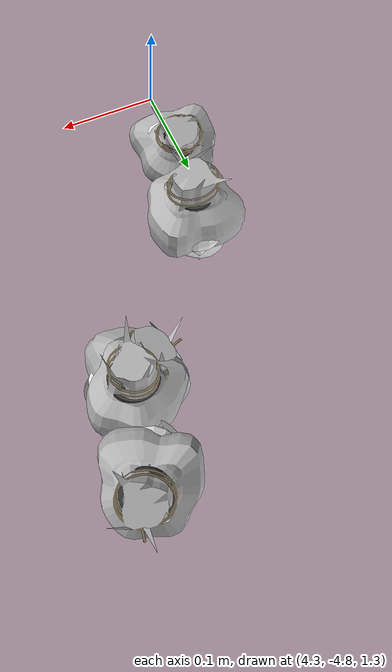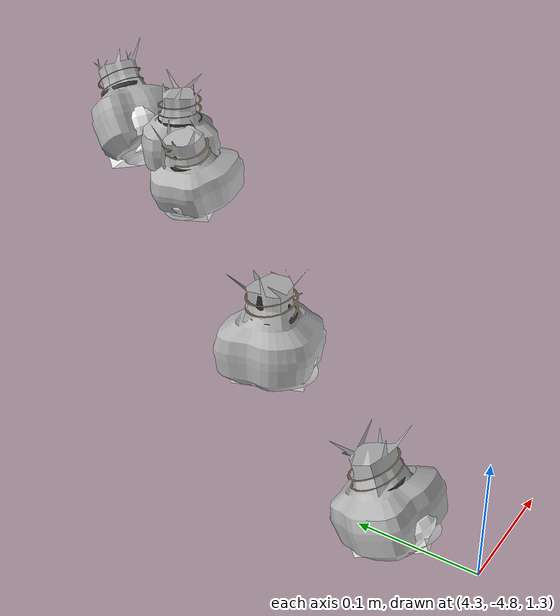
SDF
<sdf version="1.11">
 <world name="peach_orchard">
  <model name="ground">
   <static>true</static>
   <link name="link">
    <visual name="soil">
     <geometry><plane><normal>0 0 1</normal><size>32 22</size></plane></geometry>
     <material>
      <ambient>1 1 1 1</ambient>
      <diffuse>1 1 1 1</diffuse>
      <specular>0.1 0.1 0.1 1</specular>
      <pbr>
       <metal>
        <albedo_map>textures/soil_albedo.png</albedo_map>
        <normal_map type="tangent">textures/soil_normal.png</normal_map>
        <roughness>0.95</roughness>
        <metalness>0</metalness>
       </metal>
      </pbr>
     </material>
    </visual>
    <collision name="c_soil">
     <geometry><plane><normal>0 0 1</normal><size>32 22</size></plane></geometry>
    </collision>
   </link>
  </model>
  <model name="peach_tree_r3_t1_04">
   <pose>4.35047 -4.58658 1.36678 0 5.69241e-05 -1.55277</pose>
   <static>true</static>
   <link name="bag">
    <visual name="bag_mesh">
     <pose>0 0 0.0422699 0 0 -0</pose>
     <geometry>
      <mesh><uri>model://peach_sim/meshes/bagged_peach.glb</uri><scale>1.03758 1.26012 0.960679</scale></mesh>
     </geometry>
    </visual>
    <visual name="body">
     <pose>0 0 0.0242699 0 0 0</pose>
     <geometry><ellipsoid><radii>0.0389091 0.0327631 0.0262115</radii></ellipsoid></geometry>
     <material>
      <ambient>1 1 1 1</ambient>
      <diffuse>1 1 1 1</diffuse>
      <specular>0.1 0.1 0.1 1</specular>
      <pbr>
       <metal>
        <albedo_map>textures/paper_bag_albedo.png</albedo_map>
        <normal_map type="tangent">textures/paper_bag_normal.png</normal_map>
        <roughness>0.72</roughness>
        <metalness>0</metalness>
       </metal>
      </pbr>
     </material>
    </visual>
    <visual name="bottom_fold">
     <pose>0 0 0.012 0 0 0.35</pose>
     <geometry><box><size>0.0603091 0.0376776 0.022</size></box></geometry>
     <material>
      <ambient>1 1 1 1</ambient>
      <diffuse>1 1 1 1</diffuse>
      <specular>0.1 0.1 0.1 1</specular>
      <pbr>
       <metal>
        <albedo_map>textures/paper_bag_albedo.png</albedo_map>
        <normal_map type="tangent">textures/paper_bag_normal.png</normal_map>
        <roughness>0.8</roughness>
        <metalness>0</metalness>
       </metal>
      </pbr>
     </material>
    </visual>
    <visual name="fruit">
     <pose>0 0 0.0194222 0 0 0</pose>
     <geometry><sphere><radius>0.026439</radius></sphere></geometry>
     <material>
      <ambient>1 1 1 1</ambient>
      <diffuse>1 1 1 1</diffuse>
      <specular>0.1 0.1 0.1 1</specular>
      <pbr>
       <metal>
        <albedo_map>textures/fruit_skin_albedo.png</albedo_map>
        <normal_map type="tangent">textures/fruit_skin_normal.png</normal_map>
        <roughness>0.55</roughness>
        <metalness>0</metalness>
       </metal>
      </pbr>
     </material>
    </visual>
    <visual name="neck">
     <pose>0 0 0.0575397 0 0 0</pose>
     <geometry><cylinder><radius>0.013</radius><length>0.018</length></cylinder></geometry>
     <material>
      <ambient>1 1 1 1</ambient>
      <diffuse>1 1 1 1</diffuse>
      <specular>0.1 0.1 0.1 1</specular>
      <pbr>
       <metal>
        <albedo_map>textures/paper_bag_albedo.png</albedo_map>
        <normal_map type="tangent">textures/paper_bag_normal.png</normal_map>
        <roughness>0.75</roughness>
        <metalness>0</metalness>
       </metal>
      </pbr>
     </material>
    </visual>
    <visual name="gather">
     <pose>0 0 0.0385397 0 0 0</pose>
     <geometry><cylinder><radius>0.019</radius><length>0.02</length></cylinder></geometry>
     <material>
      <ambient>1 1 1 1</ambient>
      <diffuse>1 1 1 1</diffuse>
      <specular>0.1 0.1 0.1 1</specular>
      <pbr>
       <metal>
        <albedo_map>textures/paper_bag_albedo.png</albedo_map>
        <normal_map type="tangent">textures/paper_bag_normal.png</normal_map>
        <roughness>0.8</roughness>
        <metalness>0</metalness>
       </metal>
      </pbr>
     </material>
    </visual>
    <visual name="inner_paper">
     <pose>0 0 0.0625397 0 0 0</pose>
     <geometry><cylinder><radius>0.01</radius><length>0.008</length></cylinder></geometry>
     <material>
      <ambient>0.180392 0.14902 0.133333 1</ambient>
      <diffuse>0.180392 0.14902 0.133333 1</diffuse>
      <specular>0.1 0.1 0.1 1</specular>
     </material>
    </visual>
    <visual name="wire_0">
     <pose>0 0 0.0525397 0 0 0</pose>
     <geometry><cylinder><radius>0.0205</radius><length>0.0035</length></cylinder></geometry>
     <material>
      <ambient>0.25 0.25 0.25 1</ambient>
      <diffuse>0.25 0.25 0.25 1</diffuse>
      <specular>0.1 0.1 0.1 1</specular>
     </material>
    </visual>
    <visual name="wire_1">
     <pose>0 0 0.0595397 0 0 0</pose>
     <geometry><cylinder><radius>0.0205</radius><length>0.0035</length></cylinder></geometry>
     <material>
      <ambient>0.25 0.25 0.25 1</ambient>
      <diffuse>0.25 0.25 0.25 1</diffuse>
      <specular>0.1 0.1 0.1 1</specular>
     </material>
    </visual>
    <visual name="wire_tail">
     <pose>0.01 0 0.0605397 0 0.521618 0</pose>
     <geometry><cylinder><radius>0.0012</radius><length>0.026</length></cylinder></geometry>
     <material>
      <ambient>0.25 0.25 0.25 1</ambient>
      <diffuse>0.25 0.25 0.25 1</diffuse>
      <specular>0.1 0.1 0.1 1</specular>
     </material>
    </visual>
    <collision name="c_body">
     <pose>0 0 0.0242699 0 0 0</pose>
     <geometry><cylinder><radius>0.0389091</radius><length>0.0485397</length></cylinder></geometry>
    </collision>
   </link>
  </model>
  <model name="peach_tree_r3_t1_05">
   <pose>4.30682 -4.72983 1.29071 0 0.362373 1.48536</pose>
   <static>true</static>
   <link name="bag">
    <visual name="bag_mesh">
     <pose>0 0 0.0387386 0 0 0</pose>
     <geometry>
      <mesh><uri>model://peach_sim/meshes/bagged_peach.glb</uri><scale>1.02086 1.24836 0.880422</scale></mesh>
     </geometry>
    </visual>
    <visual name="body">
     <pose>0 0 0.0207386 0 0 0</pose>
     <geometry><ellipsoid><radii>0.0382822 0.0324574 0.0223977</radii></ellipsoid></geometry>
     <material>
      <ambient>1 1 1 1</ambient>
      <diffuse>1 1 1 1</diffuse>
      <specular>0.1 0.1 0.1 1</specular>
      <pbr>
       <metal>
        <albedo_map>textures/paper_bag_albedo.png</albedo_map>
        <normal_map type="tangent">textures/paper_bag_normal.png</normal_map>
        <roughness>0.72</roughness>
        <metalness>0</metalness>
       </metal>
      </pbr>
     </material>
    </visual>
    <visual name="bottom_fold">
     <pose>0 0 0.012 0 0 0.35</pose>
     <geometry><box><size>0.0593374 0.037326 0.022</size></box></geometry>
     <material>
      <ambient>1 1 1 1</ambient>
      <diffuse>1 1 1 1</diffuse>
      <specular>0.1 0.1 0.1 1</specular>
      <pbr>
       <metal>
        <albedo_map>textures/paper_bag_albedo.png</albedo_map>
        <normal_map type="tangent">textures/paper_bag_normal.png</normal_map>
        <roughness>0.8</roughness>
        <metalness>0</metalness>
       </metal>
      </pbr>
     </material>
    </visual>
    <visual name="fruit">
     <pose>0 0 0.0186004 0 0 0</pose>
     <geometry><sphere><radius>0.0255844</radius></sphere></geometry>
     <material>
      <ambient>1 1 1 1</ambient>
      <diffuse>1 1 1 1</diffuse>
      <specular>0.1 0.1 0.1 1</specular>
      <pbr>
       <metal>
        <albedo_map>textures/fruit_skin_albedo.png</albedo_map>
        <normal_map type="tangent">textures/fruit_skin_normal.png</normal_map>
        <roughness>0.55</roughness>
        <metalness>0</metalness>
       </metal>
      </pbr>
     </material>
    </visual>
    <visual name="neck">
     <pose>0 0 0.0504772 0 0 0</pose>
     <geometry><cylinder><radius>0.013</radius><length>0.018</length></cylinder></geometry>
     <material>
      <ambient>1 1 1 1</ambient>
      <diffuse>1 1 1 1</diffuse>
      <specular>0.1 0.1 0.1 1</specular>
      <pbr>
       <metal>
        <albedo_map>textures/paper_bag_albedo.png</albedo_map>
        <normal_map type="tangent">textures/paper_bag_normal.png</normal_map>
        <roughness>0.75</roughness>
        <metalness>0</metalness>
       </metal>
      </pbr>
     </material>
    </visual>
    <visual name="gather">
     <pose>0 0 0.0314772 0 0 0</pose>
     <geometry><cylinder><radius>0.019</radius><length>0.02</length></cylinder></geometry>
     <material>
      <ambient>1 1 1 1</ambient>
      <diffuse>1 1 1 1</diffuse>
      <specular>0.1 0.1 0.1 1</specular>
      <pbr>
       <metal>
        <albedo_map>textures/paper_bag_albedo.png</albedo_map>
        <normal_map type="tangent">textures/paper_bag_normal.png</normal_map>
        <roughness>0.8</roughness>
        <metalness>0</metalness>
       </metal>
      </pbr>
     </material>
    </visual>
    <visual name="inner_paper">
     <pose>0 0 0.0554772 0 0 0</pose>
     <geometry><cylinder><radius>0.01</radius><length>0.008</length></cylinder></geometry>
     <material>
      <ambient>0.180392 0.14902 0.133333 1</ambient>
      <diffuse>0.180392 0.14902 0.133333 1</diffuse>
      <specular>0.1 0.1 0.1 1</specular>
     </material>
    </visual>
    <visual name="wire_0">
     <pose>0 0 0.0454772 0 0 0</pose>
     <geometry><cylinder><radius>0.0205</radius><length>0.0035</length></cylinder></geometry>
     <material>
      <ambient>0.25 0.25 0.25 1</ambient>
      <diffuse>0.25 0.25 0.25 1</diffuse>
      <specular>0.1 0.1 0.1 1</specular>
     </material>
    </visual>
    <visual name="wire_1">
     <pose>0 0 0.0524772 0 0 0</pose>
     <geometry><cylinder><radius>0.0205</radius><length>0.0035</length></cylinder></geometry>
     <material>
      <ambient>0.25 0.25 0.25 1</ambient>
      <diffuse>0.25 0.25 0.25 1</diffuse>
      <specular>0.1 0.1 0.1 1</specular>
     </material>
    </visual>
    <visual name="wire_tail">
     <pose>0.01 0 0.0534772 0 0.521618 0</pose>
     <geometry><cylinder><radius>0.0012</radius><length>0.026</length></cylinder></geometry>
     <material>
      <ambient>0.25 0.25 0.25 1</ambient>
      <diffuse>0.25 0.25 0.25 1</diffuse>
      <specular>0.1 0.1 0.1 1</specular>
     </material>
    </visual>
    <collision name="c_body">
     <pose>0 0 0.0207386 0 0 0</pose>
     <geometry><cylinder><radius>0.0382822</radius><length>0.0414772</length></cylinder></geometry>
    </collision>
   </link>
  </model>
  <model name="peach_tree_r3_t1_07">
   <pose>4.48494 -4.41899 1.42538 0 0.287539 3.04884</pose>
   <static>true</static>
   <link name="bag">
    <visual name="bag_mesh">
     <pose>0 0 0.0385569 0 0 0</pose>
     <geometry>
      <mesh><uri>model://peach_sim/meshes/bagged_peach.glb</uri><scale>1.0035 1.19818 0.876293</scale></mesh>
     </geometry>
    </visual>
    <visual name="body">
     <pose>0 0 0.0205569 0 0 0</pose>
     <geometry><ellipsoid><radii>0.0376312 0.0311526 0.0222014</radii></ellipsoid></geometry>
     <material>
      <ambient>1 1 1 1</ambient>
      <diffuse>1 1 1 1</diffuse>
      <specular>0.1 0.1 0.1 1</specular>
      <pbr>
       <metal>
        <albedo_map>textures/paper_bag_albedo.png</albedo_map>
        <normal_map type="tangent">textures/paper_bag_normal.png</normal_map>
        <roughness>0.72</roughness>
        <metalness>0</metalness>
       </metal>
      </pbr>
     </material>
    </visual>
    <visual name="bottom_fold">
     <pose>0 0 0.012 0 0 0.35</pose>
     <geometry><box><size>0.0583283 0.0358255 0.022</size></box></geometry>
     <material>
      <ambient>1 1 1 1</ambient>
      <diffuse>1 1 1 1</diffuse>
      <specular>0.1 0.1 0.1 1</specular>
      <pbr>
       <metal>
        <albedo_map>textures/paper_bag_albedo.png</albedo_map>
        <normal_map type="tangent">textures/paper_bag_normal.png</normal_map>
        <roughness>0.8</roughness>
        <metalness>0</metalness>
       </metal>
      </pbr>
     </material>
    </visual>
    <visual name="fruit">
     <pose>0 0 0.0209464 0 0 0</pose>
     <geometry><sphere><radius>0.0280242</radius></sphere></geometry>
     <material>
      <ambient>1 1 1 1</ambient>
      <diffuse>1 1 1 1</diffuse>
      <specular>0.1 0.1 0.1 1</specular>
      <pbr>
       <metal>
        <albedo_map>textures/fruit_skin_albedo.png</albedo_map>
        <normal_map type="tangent">textures/fruit_skin_normal.png</normal_map>
        <roughness>0.55</roughness>
        <metalness>0</metalness>
       </metal>
      </pbr>
     </material>
    </visual>
    <visual name="neck">
     <pose>0 0 0.0501137 0 0 0</pose>
     <geometry><cylinder><radius>0.013</radius><length>0.018</length></cylinder></geometry>
     <material>
      <ambient>1 1 1 1</ambient>
      <diffuse>1 1 1 1</diffuse>
      <specular>0.1 0.1 0.1 1</specular>
      <pbr>
       <metal>
        <albedo_map>textures/paper_bag_albedo.png</albedo_map>
        <normal_map type="tangent">textures/paper_bag_normal.png</normal_map>
        <roughness>0.75</roughness>
        <metalness>0</metalness>
       </metal>
      </pbr>
     </material>
    </visual>
    <visual name="gather">
     <pose>0 0 0.0311137 0 0 0</pose>
     <geometry><cylinder><radius>0.019</radius><length>0.02</length></cylinder></geometry>
     <material>
      <ambient>1 1 1 1</ambient>
      <diffuse>1 1 1 1</diffuse>
      <specular>0.1 0.1 0.1 1</specular>
      <pbr>
       <metal>
        <albedo_map>textures/paper_bag_albedo.png</albedo_map>
        <normal_map type="tangent">textures/paper_bag_normal.png</normal_map>
        <roughness>0.8</roughness>
        <metalness>0</metalness>
       </metal>
      </pbr>
     </material>
    </visual>
    <visual name="inner_paper">
     <pose>0 0 0.0551137 0 0 0</pose>
     <geometry><cylinder><radius>0.01</radius><length>0.008</length></cylinder></geometry>
     <material>
      <ambient>0.180392 0.14902 0.133333 1</ambient>
      <diffuse>0.180392 0.14902 0.133333 1</diffuse>
      <specular>0.1 0.1 0.1 1</specular>
     </material>
    </visual>
    <visual name="wire_0">
     <pose>0 0 0.0451137 0 0 0</pose>
     <geometry><cylinder><radius>0.0205</radius><length>0.0035</length></cylinder></geometry>
     <material>
      <ambient>0.25 0.25 0.25 1</ambient>
      <diffuse>0.25 0.25 0.25 1</diffuse>
      <specular>0.1 0.1 0.1 1</specular>
     </material>
    </visual>
    <visual name="wire_1">
     <pose>0 0 0.0521137 0 0 0</pose>
     <geometry><cylinder><radius>0.0205</radius><length>0.0035</length></cylinder></geometry>
     <material>
      <ambient>0.25 0.25 0.25 1</ambient>
      <diffuse>0.25 0.25 0.25 1</diffuse>
      <specular>0.1 0.1 0.1 1</specular>
     </material>
    </visual>
    <visual name="wire_tail">
     <pose>0.01 0 0.0531137 0 0.521618 0</pose>
     <geometry><cylinder><radius>0.0012</radius><length>0.026</length></cylinder></geometry>
     <material>
      <ambient>0.25 0.25 0.25 1</ambient>
      <diffuse>0.25 0.25 0.25 1</diffuse>
      <specular>0.1 0.1 0.1 1</specular>
     </material>
    </visual>
    <collision name="c_body">
     <pose>0 0 0.0205569 0 0 0</pose>
     <geometry><cylinder><radius>0.0376312</radius><length>0.0411137</length></cylinder></geometry>
    </collision>
   </link>
  </model>
  <model name="peach_tree_r3_t1_08">
   <pose>4.48834 -4.39477 1.45 0 0.00301487 0.660485</pose>
   <static>true</static>
   <link name="bag">
    <visual name="bag_mesh">
     <pose>0 0 0.0385529 0 0 0</pose>
     <geometry>
      <mesh><uri>model://peach_sim/meshes/bagged_peach.glb</uri><scale>0.969057 1.05224 0.876202</scale></mesh>
     </geometry>
    </visual>
    <visual name="body">
     <pose>0 0 0.0205529 0 0 0</pose>
     <geometry><ellipsoid><radii>0.0363396 0.0273581 0.0221971</radii></ellipsoid></geometry>
     <material>
      <ambient>1 1 1 1</ambient>
      <diffuse>1 1 1 1</diffuse>
      <specular>0.1 0.1 0.1 1</specular>
      <pbr>
       <metal>
        <albedo_map>textures/paper_bag_albedo.png</albedo_map>
        <normal_map type="tangent">textures/paper_bag_normal.png</normal_map>
        <roughness>0.72</roughness>
        <metalness>0</metalness>
       </metal>
      </pbr>
     </material>
    </visual>
    <visual name="bottom_fold">
     <pose>0 0 0.012 0 0 0.35</pose>
     <geometry><box><size>0.0563265 0.0314619 0.022</size></box></geometry>
     <material>
      <ambient>1 1 1 1</ambient>
      <diffuse>1 1 1 1</diffuse>
      <specular>0.1 0.1 0.1 1</specular>
      <pbr>
       <metal>
        <albedo_map>textures/paper_bag_albedo.png</albedo_map>
        <normal_map type="tangent">textures/paper_bag_normal.png</normal_map>
        <roughness>0.8</roughness>
        <metalness>0</metalness>
       </metal>
      </pbr>
     </material>
    </visual>
    <visual name="fruit">
     <pose>0 0 0.0199453 0 0 0</pose>
     <geometry><sphere><radius>0.0269832</radius></sphere></geometry>
     <material>
      <ambient>1 1 1 1</ambient>
      <diffuse>1 1 1 1</diffuse>
      <specular>0.1 0.1 0.1 1</specular>
      <pbr>
       <metal>
        <albedo_map>textures/fruit_skin_albedo.png</albedo_map>
        <normal_map type="tangent">textures/fruit_skin_normal.png</normal_map>
        <roughness>0.55</roughness>
        <metalness>0</metalness>
       </metal>
      </pbr>
     </material>
    </visual>
    <visual name="neck">
     <pose>0 0 0.0501058 0 0 0</pose>
     <geometry><cylinder><radius>0.013</radius><length>0.018</length></cylinder></geometry>
     <material>
      <ambient>1 1 1 1</ambient>
      <diffuse>1 1 1 1</diffuse>
      <specular>0.1 0.1 0.1 1</specular>
      <pbr>
       <metal>
        <albedo_map>textures/paper_bag_albedo.png</albedo_map>
        <normal_map type="tangent">textures/paper_bag_normal.png</normal_map>
        <roughness>0.75</roughness>
        <metalness>0</metalness>
       </metal>
      </pbr>
     </material>
    </visual>
    <visual name="gather">
     <pose>0 0 0.0311058 0 0 0</pose>
     <geometry><cylinder><radius>0.019</radius><length>0.02</length></cylinder></geometry>
     <material>
      <ambient>1 1 1 1</ambient>
      <diffuse>1 1 1 1</diffuse>
      <specular>0.1 0.1 0.1 1</specular>
      <pbr>
       <metal>
        <albedo_map>textures/paper_bag_albedo.png</albedo_map>
        <normal_map type="tangent">textures/paper_bag_normal.png</normal_map>
        <roughness>0.8</roughness>
        <metalness>0</metalness>
       </metal>
      </pbr>
     </material>
    </visual>
    <visual name="inner_paper">
     <pose>0 0 0.0551058 0 0 0</pose>
     <geometry><cylinder><radius>0.01</radius><length>0.008</length></cylinder></geometry>
     <material>
      <ambient>0.180392 0.14902 0.133333 1</ambient>
      <diffuse>0.180392 0.14902 0.133333 1</diffuse>
      <specular>0.1 0.1 0.1 1</specular>
     </material>
    </visual>
    <visual name="wire_0">
     <pose>0 0 0.0451058 0 0 0</pose>
     <geometry><cylinder><radius>0.0205</radius><length>0.0035</length></cylinder></geometry>
     <material>
      <ambient>0.25 0.25 0.25 1</ambient>
      <diffuse>0.25 0.25 0.25 1</diffuse>
      <specular>0.1 0.1 0.1 1</specular>
     </material>
    </visual>
    <visual name="wire_1">
     <pose>0 0 0.0521058 0 0 0</pose>
     <geometry><cylinder><radius>0.0205</radius><length>0.0035</length></cylinder></geometry>
     <material>
      <ambient>0.25 0.25 0.25 1</ambient>
      <diffuse>0.25 0.25 0.25 1</diffuse>
      <specular>0.1 0.1 0.1 1</specular>
     </material>
    </visual>
    <visual name="wire_tail">
     <pose>0.01 0 0.0531058 0 0.521618 0</pose>
     <geometry><cylinder><radius>0.0012</radius><length>0.026</length></cylinder></geometry>
     <material>
      <ambient>0.25 0.25 0.25 1</ambient>
      <diffuse>0.25 0.25 0.25 1</diffuse>
      <specular>0.1 0.1 0.1 1</specular>
     </material>
    </visual>
    <collision name="c_body">
     <pose>0 0 0.0205529 0 0 0</pose>
     <geometry><cylinder><radius>0.0363396</radius><length>0.0411058</length></cylinder></geometry>
    </collision>
   </link>
  </model>
  <model name="peach_tree_r3_t1_09">
   <pose>4.49435 -4.3443 1.45 0 0.710862 1.06841</pose>
   <static>true</static>
   <link name="bag">
    <visual name="bag_mesh">
     <pose>0 0 0.0470008 0 0 0</pose>
     <geometry>
      <mesh><uri>model://peach_sim/meshes/bagged_peach.glb</uri><scale>1.05423 1.16504 1.0682</scale></mesh>
     </geometry>
    </visual>
    <visual name="body">
     <pose>0 0 0.0290008 0 0 0</pose>
     <geometry><ellipsoid><radii>0.0395336 0.0302912 0.0313208</radii></ellipsoid></geometry>
     <material>
      <ambient>1 1 1 1</ambient>
      <diffuse>1 1 1 1</diffuse>
      <specular>0.1 0.1 0.1 1</specular>
      <pbr>
       <metal>
        <albedo_map>textures/paper_bag_albedo.png</albedo_map>
        <normal_map type="tangent">textures/paper_bag_normal.png</normal_map>
        <roughness>0.72</roughness>
        <metalness>0</metalness>
       </metal>
      </pbr>
     </material>
    </visual>
    <visual name="bottom_fold">
     <pose>0 0 0.012 0 0 0.35</pose>
     <geometry><box><size>0.0612771 0.0348348 0.022</size></box></geometry>
     <material>
      <ambient>1 1 1 1</ambient>
      <diffuse>1 1 1 1</diffuse>
      <specular>0.1 0.1 0.1 1</specular>
      <pbr>
       <metal>
        <albedo_map>textures/paper_bag_albedo.png</albedo_map>
        <normal_map type="tangent">textures/paper_bag_normal.png</normal_map>
        <roughness>0.8</roughness>
        <metalness>0</metalness>
       </metal>
      </pbr>
     </material>
    </visual>
    <visual name="fruit">
     <pose>0 0 0.0213396 0 0 0</pose>
     <geometry><sphere><radius>0.0284332</radius></sphere></geometry>
     <material>
      <ambient>1 1 1 1</ambient>
      <diffuse>1 1 1 1</diffuse>
      <specular>0.1 0.1 0.1 1</specular>
      <pbr>
       <metal>
        <albedo_map>textures/fruit_skin_albedo.png</albedo_map>
        <normal_map type="tangent">textures/fruit_skin_normal.png</normal_map>
        <roughness>0.55</roughness>
        <metalness>0</metalness>
       </metal>
      </pbr>
     </material>
    </visual>
    <visual name="neck">
     <pose>0 0 0.0670015 0 0 0</pose>
     <geometry><cylinder><radius>0.013</radius><length>0.018</length></cylinder></geometry>
     <material>
      <ambient>1 1 1 1</ambient>
      <diffuse>1 1 1 1</diffuse>
      <specular>0.1 0.1 0.1 1</specular>
      <pbr>
       <metal>
        <albedo_map>textures/paper_bag_albedo.png</albedo_map>
        <normal_map type="tangent">textures/paper_bag_normal.png</normal_map>
        <roughness>0.75</roughness>
        <metalness>0</metalness>
       </metal>
      </pbr>
     </material>
    </visual>
    <visual name="gather">
     <pose>0 0 0.0480015 0 0 0</pose>
     <geometry><cylinder><radius>0.019</radius><length>0.02</length></cylinder></geometry>
     <material>
      <ambient>1 1 1 1</ambient>
      <diffuse>1 1 1 1</diffuse>
      <specular>0.1 0.1 0.1 1</specular>
      <pbr>
       <metal>
        <albedo_map>textures/paper_bag_albedo.png</albedo_map>
        <normal_map type="tangent">textures/paper_bag_normal.png</normal_map>
        <roughness>0.8</roughness>
        <metalness>0</metalness>
       </metal>
      </pbr>
     </material>
    </visual>
    <visual name="inner_paper">
     <pose>0 0 0.0720015 0 0 0</pose>
     <geometry><cylinder><radius>0.01</radius><length>0.008</length></cylinder></geometry>
     <material>
      <ambient>0.180392 0.14902 0.133333 1</ambient>
      <diffuse>0.180392 0.14902 0.133333 1</diffuse>
      <specular>0.1 0.1 0.1 1</specular>
     </material>
    </visual>
    <visual name="wire_0">
     <pose>0 0 0.0620015 0 0 0</pose>
     <geometry><cylinder><radius>0.0205</radius><length>0.0035</length></cylinder></geometry>
     <material>
      <ambient>0.25 0.25 0.25 1</ambient>
      <diffuse>0.25 0.25 0.25 1</diffuse>
      <specular>0.1 0.1 0.1 1</specular>
     </material>
    </visual>
    <visual name="wire_1">
     <pose>0 0 0.0690015 0 0 0</pose>
     <geometry><cylinder><radius>0.0205</radius><length>0.0035</length></cylinder></geometry>
     <material>
      <ambient>0.25 0.25 0.25 1</ambient>
      <diffuse>0.25 0.25 0.25 1</diffuse>
      <specular>0.1 0.1 0.1 1</specular>
     </material>
    </visual>
    <visual name="wire_tail">
     <pose>0.01 0 0.0700015 0 0.521618 0</pose>
     <geometry><cylinder><radius>0.0012</radius><length>0.026</length></cylinder></geometry>
     <material>
      <ambient>0.25 0.25 0.25 1</ambient>
      <diffuse>0.25 0.25 0.25 1</diffuse>
      <specular>0.1 0.1 0.1 1</specular>
     </material>
    </visual>
    <collision name="c_body">
     <pose>0 0 0.0290008 0 0 0</pose>
     <geometry><cylinder><radius>0.0395336</radius><length>0.0580015</length></cylinder></geometry>
    </collision>
   </link>
  </model>
 </world>
</sdf>
